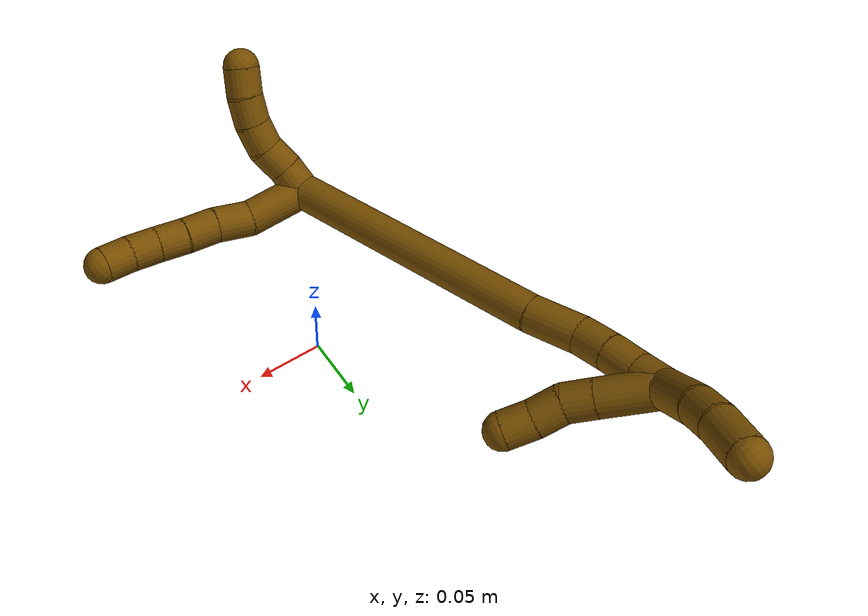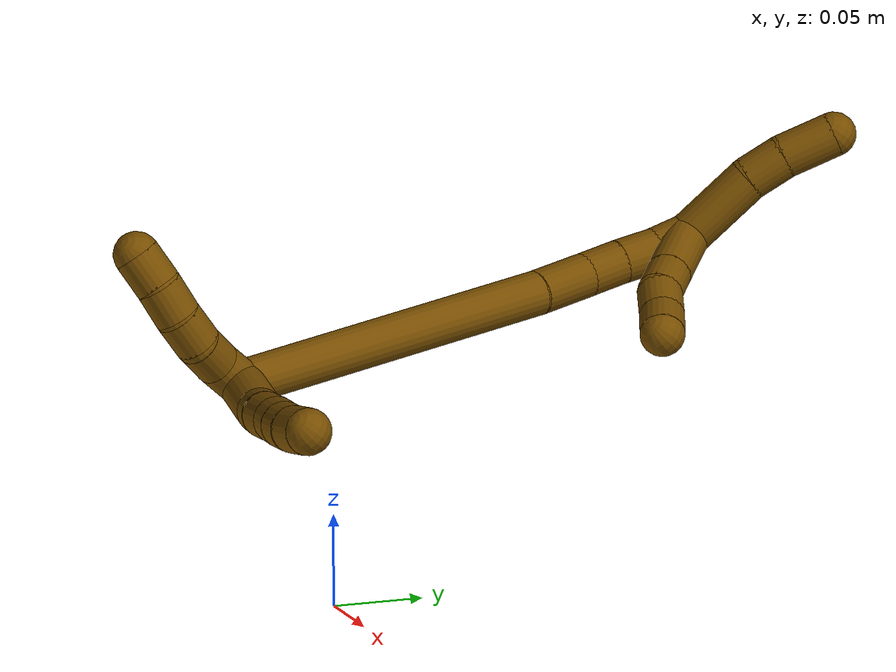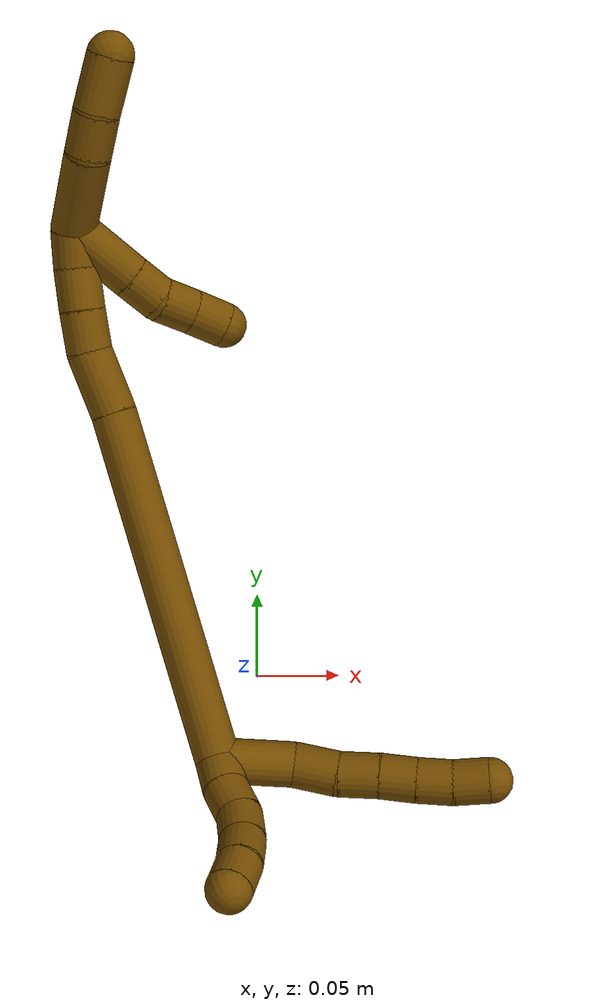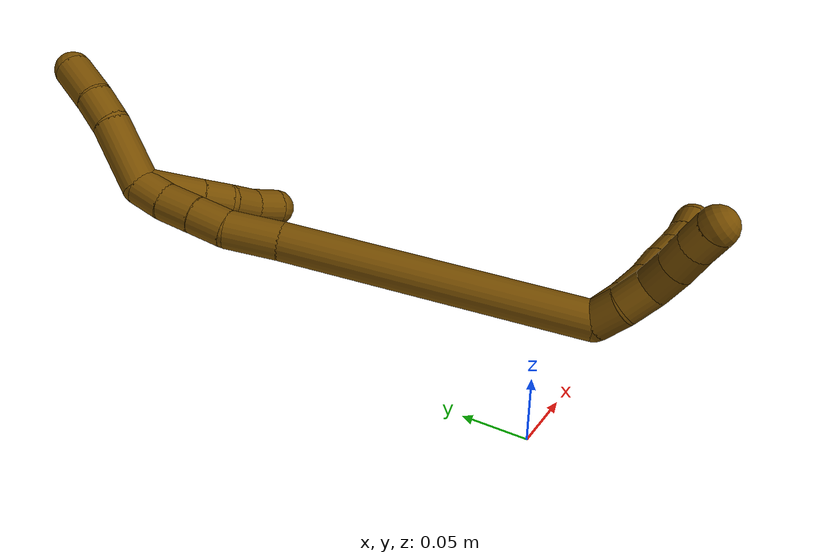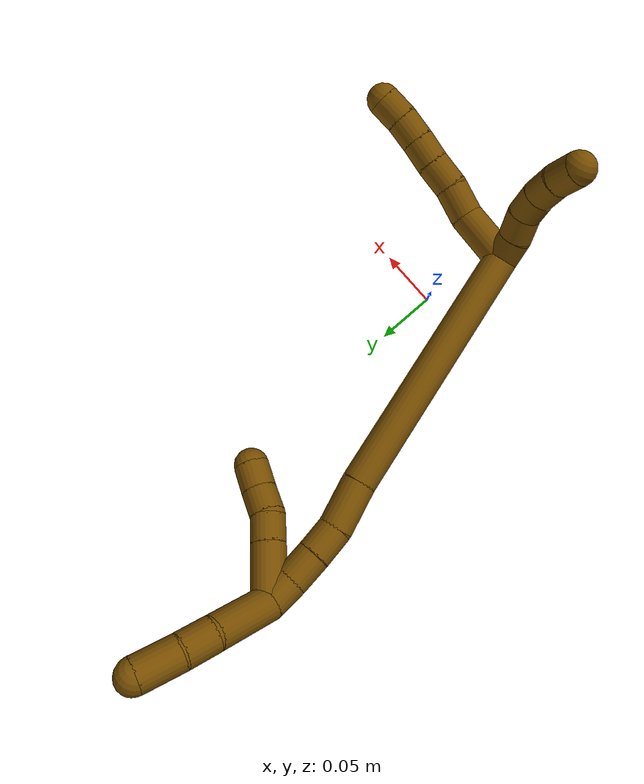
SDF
<sdf version="1.7">
 <world name="default">
  <model name="photoneo_s_sensor">
   <static>1</static>
   <pose>0 0 2 1.57079 1.57079 3.14159</pose>
   <link name="link">
    <inertial><mass>0.1</mass></inertial>
    <sensor name="sensor" type="depth">
     <update_rate>30</update_rate>
     <camera>
      <horizontal_fov>1.22</horizontal_fov>
      <image><width>1920</width><height>1200</height><format>B8G8R8</format></image>
      <clip><near>0.1</near><far>4</far></clip>
      <depth_camera><output>points</output></depth_camera>
     </camera>
     <plugin name="camera_plugin" filename="libgazebo_ros_depth_camera.so">
      <baseline>0.2</baseline>
      <alwaysOn>1</alwaysOn>
      <updateRate>0.0</updateRate>
      <cameraName>camera_ir</cameraName>
      <imageTopicName>/camera/color/image_raw</imageTopicName>
      <cameraInfoTopicName>/camera/color/camera_info</cameraInfoTopicName>
      <depthImageTopicName>/camera/depth/image_raw</depthImageTopicName>
      <depthImageCameraInfoTopicName>/camera/depth/camera_info</depthImageCameraInfoTopicName>
      <pointCloudTopicName>/camera/depth/points</pointCloudTopicName>
      <frameName>fr_optical</frameName>
      <pointCloudCutoff>0.1</pointCloudCutoff>
      <pointCloudCutoffMax>2.0</pointCloudCutoffMax>
      <distortionK1>0</distortionK1>
      <distortionK2>0</distortionK2>
      <distortionK3>0</distortionK3>
      <distortionT1>0</distortionT1>
      <distortionT2>0</distortionT2>
      <CxPrime>0</CxPrime>
      <Cx>0</Cx>
      <Cy>0</Cy>
      <focalLength>0</focalLength>
      <hackBaseline>0</hackBaseline>
     </plugin>
    </sensor>
   </link>
  </model>
  <model name="12">
   <static>0</static>
   <link name="12">
    <collision name="collision-cylinder-e_1_2_8">
     <pose>0.020426 0.0005 0.004698 -0.106006 1.34351 -0.084315</pose>
     <geometry><cylinder><radius>0.0125</radius><length>0.041931</length></cylinder></geometry>
     <surface>
      <friction><ode><mu>1.16</mu><mu2>1.16</mu2><slip1>0</slip1><slip2>0</slip2></ode></friction>
      <contact><ode><kp>1e+06</kp><kd>1</kd><max_vel>0</max_vel><min_depth>0.001</min_depth></ode></contact>
     </surface>
    </collision>
    <visual name="visual-cylinder-e_1_2_8">
     <pose>0.020426 0.0005 0.004698 -0.106006 1.34351 -0.084315</pose>
     <geometry><cylinder><radius>0.0125</radius><length>0.041931</length></cylinder></geometry>
     <material><ambient>0.466667 0.301961 0 1</ambient></material>
    </visual>
    <collision name="collision-cylinder-e_2_8_9">
     <pose>0.05171 0.002596 0.015751 -0.246018 1.02778 -0.13935</pose>
     <geometry><cylinder><radius>0.0125</radius><length>0.025364</length></cylinder></geometry>
     <surface>
      <friction><ode><mu>1.16</mu><mu2>1.16</mu2><slip1>0</slip1><slip2>0</slip2></ode></friction>
      <contact><ode><kp>1e+06</kp><kd>1</kd><max_vel>0</max_vel><min_depth>0.001</min_depth></ode></contact>
     </surface>
    </collision>
    <visual name="visual-cylinder-e_2_8_9">
     <pose>0.05171 0.002596 0.015751 -0.246018 1.02778 -0.13935</pose>
     <geometry><cylinder><radius>0.0125</radius><length>0.025364</length></cylinder></geometry>
     <material><ambient>0.466667 0.301961 0 1</ambient></material>
    </visual>
    <collision name="collision-cylinder-e_3_9_10">
     <pose>0.072721 0.006543 0.026158 -0.525886 1.13857 -0.341175</pose>
     <geometry><cylinder><radius>0.0125</radius><length>0.022362</length></cylinder></geometry>
     <surface>
      <friction><ode><mu>1.16</mu><mu2>1.16</mu2><slip1>0</slip1><slip2>0</slip2></ode></friction>
      <contact><ode><kp>1e+06</kp><kd>1</kd><max_vel>0</max_vel><min_depth>0.001</min_depth></ode></contact>
     </surface>
    </collision>
    <visual name="visual-cylinder-e_3_9_10">
     <pose>0.072721 0.006543 0.026158 -0.525886 1.13857 -0.341175</pose>
     <geometry><cylinder><radius>0.0125</radius><length>0.022362</length></cylinder></geometry>
     <material><ambient>0.466667 0.301961 0 1</ambient></material>
    </visual>
    <collision name="collision-cylinder-e_4_10_11">
     <pose>0.091967 0.010427 0.034365 -0.353378 1.11747 -0.222334</pose>
     <geometry><cylinder><radius>0.0125</radius><length>0.02023</length></cylinder></geometry>
     <surface>
      <friction><ode><mu>1.16</mu><mu2>1.16</mu2><slip1>0</slip1><slip2>0</slip2></ode></friction>
      <contact><ode><kp>1e+06</kp><kd>1</kd><max_vel>0</max_vel><min_depth>0.001</min_depth></ode></contact>
     </surface>
    </collision>
    <visual name="visual-cylinder-e_4_10_11">
     <pose>0.091967 0.010427 0.034365 -0.353378 1.11747 -0.222334</pose>
     <geometry><cylinder><radius>0.0125</radius><length>0.02023</length></cylinder></geometry>
     <material><ambient>0.466667 0.301961 0 1</ambient></material>
    </visual>
    <collision name="collision-cylinder-e_5_11_12">
     <pose>0.110096 0.013985 0.042378 -0.483413 1.12159 -0.307227</pose>
     <geometry><cylinder><radius>0.0125</radius><length>0.02006</length></cylinder></geometry>
     <surface>
      <friction><ode><mu>1.16</mu><mu2>1.16</mu2><slip1>0</slip1><slip2>0</slip2></ode></friction>
      <contact><ode><kp>1e+06</kp><kd>1</kd><max_vel>0</max_vel><min_depth>0.001</min_depth></ode></contact>
     </surface>
    </collision>
    <visual name="visual-cylinder-e_5_11_12">
     <pose>0.110096 0.013985 0.042378 -0.483413 1.12159 -0.307227</pose>
     <geometry><cylinder><radius>0.0125</radius><length>0.02006</length></cylinder></geometry>
     <material><ambient>0.466667 0.301961 0 1</ambient></material>
    </visual>
    <collision name="collision-cylinder-e_6_12_6">
     <pose>0.1281 0.019196 0.049384 -0.791234 1.10749 -0.505382</pose>
     <geometry><cylinder><radius>0.0125</radius><length>0.020052</length></cylinder></geometry>
     <surface>
      <friction><ode><mu>1.16</mu><mu2>1.16</mu2><slip1>0</slip1><slip2>0</slip2></ode></friction>
      <contact><ode><kp>1e+06</kp><kd>1</kd><max_vel>0</max_vel><min_depth>0.001</min_depth></ode></contact>
     </surface>
    </collision>
    <visual name="visual-cylinder-e_6_12_6">
     <pose>0.1281 0.019196 0.049384 -0.791234 1.10749 -0.505382</pose>
     <geometry><cylinder><radius>0.0125</radius><length>0.020052</length></cylinder></geometry>
     <material><ambient>0.466667 0.301961 0 1</ambient></material>
    </visual>
    <collision name="collision-cylinder-e_1_2_13">
     <pose>-0.000491 -0.000122 0.009987 0.012199 -0.049072 -0.000299</pose>
     <geometry><cylinder><radius>0.0125</radius><length>0.02</length></cylinder></geometry>
     <surface>
      <friction><ode><mu>1.16</mu><mu2>1.16</mu2><slip1>0</slip1><slip2>0</slip2></ode></friction>
      <contact><ode><kp>1e+06</kp><kd>1</kd><max_vel>0</max_vel><min_depth>0.001</min_depth></ode></contact>
     </surface>
    </collision>
    <visual name="visual-cylinder-e_1_2_13">
     <pose>-0.000491 -0.000122 0.009987 0.012199 -0.049072 -0.000299</pose>
     <geometry><cylinder><radius>0.0125</radius><length>0.02</length></cylinder></geometry>
     <material><ambient>0.466667 0.301961 0 1</ambient></material>
    </visual>
    <collision name="collision-cylinder-e_2_13_14">
     <pose>5.7e-05 0.000556 0.029888 -0.080484 0.10401 -0.004192</pose>
     <geometry><cylinder><radius>0.0125</radius><length>0.02</length></cylinder></geometry>
     <surface>
      <friction><ode><mu>1.16</mu><mu2>1.16</mu2><slip1>0</slip1><slip2>0</slip2></ode></friction>
      <contact><ode><kp>1e+06</kp><kd>1</kd><max_vel>0</max_vel><min_depth>0.001</min_depth></ode></contact>
     </surface>
    </collision>
    <visual name="visual-cylinder-e_2_13_14">
     <pose>5.7e-05 0.000556 0.029888 -0.080484 0.10401 -0.004192</pose>
     <geometry><cylinder><radius>0.0125</radius><length>0.02</length></cylinder></geometry>
     <material><ambient>0.466667 0.301961 0 1</ambient></material>
    </visual>
    <collision name="collision-cylinder-e_3_14_15">
     <pose>-0.000968 0.003172 0.049417 -0.186728 -0.207799 0.019527</pose>
     <geometry><cylinder><radius>0.0125</radius><length>0.02</length></cylinder></geometry>
     <surface>
      <friction><ode><mu>1.16</mu><mu2>1.16</mu2><slip1>0</slip1><slip2>0</slip2></ode></friction>
      <contact><ode><kp>1e+06</kp><kd>1</kd><max_vel>0</max_vel><min_depth>0.001</min_depth></ode></contact>
     </surface>
    </collision>
    <visual name="visual-cylinder-e_3_14_15">
     <pose>-0.000968 0.003172 0.049417 -0.186728 -0.207799 0.019527</pose>
     <geometry><cylinder><radius>0.0125</radius><length>0.02</length></cylinder></geometry>
     <material><ambient>0.466667 0.301961 0 1</ambient></material>
    </visual>
    <collision name="collision-cylinder-e_4_15_16">
     <pose>-0.006835 0.007388 0.067963 -0.262424 -0.390221 0.052149</pose>
     <geometry><cylinder><radius>0.0125</radius><length>0.02</length></cylinder></geometry>
     <surface>
      <friction><ode><mu>1.16</mu><mu2>1.16</mu2><slip1>0</slip1><slip2>0</slip2></ode></friction>
      <contact><ode><kp>1e+06</kp><kd>1</kd><max_vel>0</max_vel><min_depth>0.001</min_depth></ode></contact>
     </surface>
    </collision>
    <visual name="visual-cylinder-e_4_15_16">
     <pose>-0.006835 0.007388 0.067963 -0.262424 -0.390221 0.052149</pose>
     <geometry><cylinder><radius>0.0125</radius><length>0.02</length></cylinder></geometry>
     <material><ambient>0.466667 0.301961 0 1</ambient></material>
    </visual>
    <collision name="collision-cylinder-e_5_16_5">
     <pose>-0.015879 0.011542 0.085229 -0.207585 -0.551609 0.058945</pose>
     <geometry><cylinder><radius>0.0125</radius><length>0.02</length></cylinder></geometry>
     <surface>
      <friction><ode><mu>1.16</mu><mu2>1.16</mu2><slip1>0</slip1><slip2>0</slip2></ode></friction>
      <contact><ode><kp>1e+06</kp><kd>1</kd><max_vel>0</max_vel><min_depth>0.001</min_depth></ode></contact>
     </surface>
    </collision>
    <visual name="visual-cylinder-e_5_16_5">
     <pose>-0.015879 0.011542 0.085229 -0.207585 -0.551609 0.058945</pose>
     <geometry><cylinder><radius>0.0125</radius><length>0.02</length></cylinder></geometry>
     <material><ambient>0.466667 0.301961 0 1</ambient></material>
    </visual>
    <collision name="collision-cylinder-e_1_2_17">
     <pose>-0.022491 0.06887 -0.067321 -2.34483 -0.229416 0.534386</pose>
     <geometry><cylinder><radius>0.0125</radius><length>0.197799</length></cylinder></geometry>
     <surface>
      <friction><ode><mu>1.16</mu><mu2>1.16</mu2><slip1>0</slip1><slip2>0</slip2></ode></friction>
      <contact><ode><kp>1e+06</kp><kd>1</kd><max_vel>0</max_vel><min_depth>0.001</min_depth></ode></contact>
     </surface>
    </collision>
    <visual name="visual-cylinder-e_1_2_17">
     <pose>-0.022491 0.06887 -0.067321 -2.34483 -0.229416 0.534386</pose>
     <geometry><cylinder><radius>0.0125</radius><length>0.197799</length></cylinder></geometry>
     <material><ambient>0.466667 0.301961 0 1</ambient></material>
    </visual>
    <collision name="collision-cylinder-e_2_17_18">
     <pose>-0.050589 0.149781 -0.146621 -2.35359 -0.318905 0.738192</pose>
     <geometry><cylinder><radius>0.0125</radius><length>0.035772</length></cylinder></geometry>
     <surface>
      <friction><ode><mu>1.16</mu><mu2>1.16</mu2><slip1>0</slip1><slip2>0</slip2></ode></friction>
      <contact><ode><kp>1e+06</kp><kd>1</kd><max_vel>0</max_vel><min_depth>0.001</min_depth></ode></contact>
     </surface>
    </collision>
    <visual name="visual-cylinder-e_2_17_18">
     <pose>-0.050589 0.149781 -0.146621 -2.35359 -0.318905 0.738192</pose>
     <geometry><cylinder><radius>0.0125</radius><length>0.035772</length></cylinder></geometry>
     <material><ambient>0.466667 0.301961 0 1</ambient></material>
    </visual>
    <collision name="collision-cylinder-e_3_18_19">
     <pose>-0.057802 0.171054 -0.165327 -2.20053 -0.139634 0.27326</pose>
     <geometry><cylinder><radius>0.0125</radius><length>0.023072</length></cylinder></geometry>
     <surface>
      <friction><ode><mu>1.16</mu><mu2>1.16</mu2><slip1>0</slip1><slip2>0</slip2></ode></friction>
      <contact><ode><kp>1e+06</kp><kd>1</kd><max_vel>0</max_vel><min_depth>0.001</min_depth></ode></contact>
     </surface>
    </collision>
    <visual name="visual-cylinder-e_3_18_19">
     <pose>-0.057802 0.171054 -0.165327 -2.20053 -0.139634 0.27326</pose>
     <geometry><cylinder><radius>0.0125</radius><length>0.023072</length></cylinder></geometry>
     <material><ambient>0.466667 0.301961 0 1</ambient></material>
    </visual>
    <collision name="collision-cylinder-e_4_19_20">
     <pose>-0.060507 0.189411 -0.179006 -2.22185 -0.095576 0.19252</pose>
     <geometry><cylinder><radius>0.0125</radius><length>0.023046</length></cylinder></geometry>
     <surface>
      <friction><ode><mu>1.16</mu><mu2>1.16</mu2><slip1>0</slip1><slip2>0</slip2></ode></friction>
      <contact><ode><kp>1e+06</kp><kd>1</kd><max_vel>0</max_vel><min_depth>0.001</min_depth></ode></contact>
     </surface>
    </collision>
    <visual name="visual-cylinder-e_4_19_20">
     <pose>-0.060507 0.189411 -0.179006 -2.22185 -0.095576 0.19252</pose>
     <geometry><cylinder><radius>0.0125</radius><length>0.023046</length></cylinder></geometry>
     <material><ambient>0.466667 0.301961 0 1</ambient></material>
    </visual>
    <collision name="collision-cylinder-e_5_20_1">
     <pose>-0.062335 0.20738 -0.190895 -2.07987 -0.071716 0.122059</pose>
     <geometry><cylinder><radius>0.0125</radius><length>0.020311</length></cylinder></geometry>
     <surface>
      <friction><ode><mu>1.16</mu><mu2>1.16</mu2><slip1>0</slip1><slip2>0</slip2></ode></friction>
      <contact><ode><kp>1e+06</kp><kd>1</kd><max_vel>0</max_vel><min_depth>0.001</min_depth></ode></contact>
     </surface>
    </collision>
    <visual name="visual-cylinder-e_5_20_1">
     <pose>-0.062335 0.20738 -0.190895 -2.07987 -0.071716 0.122059</pose>
     <geometry><cylinder><radius>0.0125</radius><length>0.020311</length></cylinder></geometry>
     <material><ambient>0.466667 0.301961 0 1</ambient></material>
    </visual>
    <collision name="collision-cylinder-e_1_1_21">
     <pose>-0.061697 0.239581 -0.195616 -1.56156 0.058392 -0.057855</pose>
     <geometry><cylinder><radius>0.0125</radius><length>0.046793</length></cylinder></geometry>
     <surface>
      <friction><ode><mu>1.16</mu><mu2>1.16</mu2><slip1>0</slip1><slip2>0</slip2></ode></friction>
      <contact><ode><kp>1e+06</kp><kd>1</kd><max_vel>0</max_vel><min_depth>0.001</min_depth></ode></contact>
     </surface>
    </collision>
    <visual name="visual-cylinder-e_1_1_21">
     <pose>-0.061697 0.239581 -0.195616 -1.56156 0.058392 -0.057855</pose>
     <geometry><cylinder><radius>0.0125</radius><length>0.046793</length></cylinder></geometry>
     <material><ambient>0.466667 0.301961 0 1</ambient></material>
    </visual>
    <collision name="collision-cylinder-e_2_21_22">
     <pose>-0.058886 0.274148 -0.197389 -1.74639 0.126261 -0.15055</pose>
     <geometry><cylinder><radius>0.0125</radius><length>0.022956</length></cylinder></geometry>
     <surface>
      <friction><ode><mu>1.16</mu><mu2>1.16</mu2><slip1>0</slip1><slip2>0</slip2></ode></friction>
      <contact><ode><kp>1e+06</kp><kd>1</kd><max_vel>0</max_vel><min_depth>0.001</min_depth></ode></contact>
     </surface>
    </collision>
    <visual name="visual-cylinder-e_2_21_22">
     <pose>-0.058886 0.274148 -0.197389 -1.74639 0.126261 -0.15055</pose>
     <geometry><cylinder><radius>0.0125</radius><length>0.022956</length></cylinder></geometry>
     <material><ambient>0.466667 0.301961 0 1</ambient></material>
    </visual>
    <collision name="collision-cylinder-e_3_22_4">
     <pose>-0.054354 0.299501 -0.203766 -1.8716 0.205537 -0.278141</pose>
     <geometry><cylinder><radius>0.0125</radius><length>0.030251</length></cylinder></geometry>
     <surface>
      <friction><ode><mu>1.16</mu><mu2>1.16</mu2><slip1>0</slip1><slip2>0</slip2></ode></friction>
      <contact><ode><kp>1e+06</kp><kd>1</kd><max_vel>0</max_vel><min_depth>0.001</min_depth></ode></contact>
     </surface>
    </collision>
    <visual name="visual-cylinder-e_3_22_4">
     <pose>-0.054354 0.299501 -0.203766 -1.8716 0.205537 -0.278141</pose>
     <geometry><cylinder><radius>0.0125</radius><length>0.030251</length></cylinder></geometry>
     <material><ambient>0.466667 0.301961 0 1</ambient></material>
    </visual>
    <collision name="collision-cylinder-e_1_1_23">
     <pose>-0.047782 0.206076 -0.188208 0.926608 0.877611 0.4606</pose>
     <geometry><cylinder><radius>0.0125</radius><length>0.039729</length></cylinder></geometry>
     <surface>
      <friction><ode><mu>1.16</mu><mu2>1.16</mu2><slip1>0</slip1><slip2>0</slip2></ode></friction>
      <contact><ode><kp>1e+06</kp><kd>1</kd><max_vel>0</max_vel><min_depth>0.001</min_depth></ode></contact>
     </surface>
    </collision>
    <visual name="visual-cylinder-e_1_1_23">
     <pose>-0.047782 0.206076 -0.188208 0.926608 0.877611 0.4606</pose>
     <geometry><cylinder><radius>0.0125</radius><length>0.039729</length></cylinder></geometry>
     <material><ambient>0.466667 0.301961 0 1</ambient></material>
    </visual>
    <collision name="collision-cylinder-e_2_23_24">
     <pose>-0.024706 0.190939 -0.176767 0.917308 0.892607 0.464035</pose>
     <geometry><cylinder><radius>0.0125</radius><length>0.020024</length></cylinder></geometry>
     <surface>
      <friction><ode><mu>1.16</mu><mu2>1.16</mu2><slip1>0</slip1><slip2>0</slip2></ode></friction>
      <contact><ode><kp>1e+06</kp><kd>1</kd><max_vel>0</max_vel><min_depth>0.001</min_depth></ode></contact>
     </surface>
    </collision>
    <visual name="visual-cylinder-e_2_23_24">
     <pose>-0.024706 0.190939 -0.176767 0.917308 0.892607 0.464035</pose>
     <geometry><cylinder><radius>0.0125</radius><length>0.020024</length></cylinder></geometry>
     <material><ambient>0.466667 0.301961 0 1</ambient></material>
    </visual>
    <collision name="collision-cylinder-e_3_24_25">
     <pose>-0.007516 0.182465 -0.171612 1.20488 1.19243 0.873294</pose>
     <geometry><cylinder><radius>0.0125</radius><length>0.020218</length></cylinder></geometry>
     <surface>
      <friction><ode><mu>1.16</mu><mu2>1.16</mu2><slip1>0</slip1><slip2>0</slip2></ode></friction>
      <contact><ode><kp>1e+06</kp><kd>1</kd><max_vel>0</max_vel><min_depth>0.001</min_depth></ode></contact>
     </surface>
    </collision>
    <visual name="visual-cylinder-e_3_24_25">
     <pose>-0.007516 0.182465 -0.171612 1.20488 1.19243 0.873294</pose>
     <geometry><cylinder><radius>0.0125</radius><length>0.020218</length></cylinder></geometry>
     <material><ambient>0.466667 0.301961 0 1</ambient></material>
    </visual>
    <collision name="collision-cylinder-e_4_25_3">
     <pose>0.011032 0.176107 -0.167403 0.785095 1.15321 0.52604</pose>
     <geometry><cylinder><radius>0.0125</radius><length>0.020029</length></cylinder></geometry>
     <surface>
      <friction><ode><mu>1.16</mu><mu2>1.16</mu2><slip1>0</slip1><slip2>0</slip2></ode></friction>
      <contact><ode><kp>1e+06</kp><kd>1</kd><max_vel>0</max_vel><min_depth>0.001</min_depth></ode></contact>
     </surface>
    </collision>
    <visual name="visual-cylinder-e_4_25_3">
     <pose>0.011032 0.176107 -0.167403 0.785095 1.15321 0.52604</pose>
     <geometry><cylinder><radius>0.0125</radius><length>0.020029</length></cylinder></geometry>
     <material><ambient>0.466667 0.301961 0 1</ambient></material>
    </visual>
    <collision name="collision-sphere-3">
     <pose>0.020186 0.173236 -0.16453 0 -0 0</pose>
     <geometry><sphere><radius>0.0125</radius></sphere></geometry>
     <surface>
      <friction><ode><mu>1.16</mu><mu2>1.16</mu2><slip1>0</slip1><slip2>0</slip2></ode></friction>
      <contact><ode><kp>1e+06</kp><kd>1</kd><max_vel>0</max_vel><min_depth>0.001</min_depth></ode></contact>
     </surface>
    </collision>
    <visual name="visual-sphere-3">
     <pose>0.020186 0.173236 -0.16453 0 -0 0</pose>
     <geometry><sphere><radius>0.0125</radius></sphere></geometry>
     <material><ambient>0.466667 0.301961 0 1</ambient></material>
    </visual>
    <collision name="collision-sphere-25">
     <pose>0.001878 0.178978 -0.170276 0 -0 0</pose>
     <geometry><sphere><radius>0.0125</radius></sphere></geometry>
     <surface>
      <friction><ode><mu>1.16</mu><mu2>1.16</mu2><slip1>0</slip1><slip2>0</slip2></ode></friction>
      <contact><ode><kp>1e+06</kp><kd>1</kd><max_vel>0</max_vel><min_depth>0.001</min_depth></ode></contact>
     </surface>
    </collision>
    <visual name="visual-sphere-25">
     <pose>0.001878 0.178978 -0.170276 0 -0 0</pose>
     <geometry><sphere><radius>0.0125</radius></sphere></geometry>
     <material><ambient>0.466667 0.301961 0 1</ambient></material>
    </visual>
    <collision name="collision-sphere-24">
     <pose>-0.01691 0.185952 -0.172948 0 -0 0</pose>
     <geometry><sphere><radius>0.0125</radius></sphere></geometry>
     <surface>
      <friction><ode><mu>1.16</mu><mu2>1.16</mu2><slip1>0</slip1><slip2>0</slip2></ode></friction>
      <contact><ode><kp>1e+06</kp><kd>1</kd><max_vel>0</max_vel><min_depth>0.001</min_depth></ode></contact>
     </surface>
    </collision>
    <visual name="visual-sphere-24">
     <pose>-0.01691 0.185952 -0.172948 0 -0 0</pose>
     <geometry><sphere><radius>0.0125</radius></sphere></geometry>
     <material><ambient>0.466667 0.301961 0 1</ambient></material>
    </visual>
    <collision name="collision-sphere-23">
     <pose>-0.032502 0.195926 -0.180585 0 -0 0</pose>
     <geometry><sphere><radius>0.0125</radius></sphere></geometry>
     <surface>
      <friction><ode><mu>1.16</mu><mu2>1.16</mu2><slip1>0</slip1><slip2>0</slip2></ode></friction>
      <contact><ode><kp>1e+06</kp><kd>1</kd><max_vel>0</max_vel><min_depth>0.001</min_depth></ode></contact>
     </surface>
    </collision>
    <visual name="visual-sphere-23">
     <pose>-0.032502 0.195926 -0.180585 0 -0 0</pose>
     <geometry><sphere><radius>0.0125</radius></sphere></geometry>
     <material><ambient>0.466667 0.301961 0 1</ambient></material>
    </visual>
    <collision name="collision-sphere-4">
     <pose>-0.051267 0.313644 -0.208153 0 -0 0</pose>
     <geometry><sphere><radius>0.0125</radius></sphere></geometry>
     <surface>
      <friction><ode><mu>1.16</mu><mu2>1.16</mu2><slip1>0</slip1><slip2>0</slip2></ode></friction>
      <contact><ode><kp>1e+06</kp><kd>1</kd><max_vel>0</max_vel><min_depth>0.001</min_depth></ode></contact>
     </surface>
    </collision>
    <visual name="visual-sphere-4">
     <pose>-0.051267 0.313644 -0.208153 0 -0 0</pose>
     <geometry><sphere><radius>0.0125</radius></sphere></geometry>
     <material><ambient>0.466667 0.301961 0 1</ambient></material>
    </visual>
    <collision name="collision-sphere-22">
     <pose>-0.057441 0.285359 -0.199378 0 -0 0</pose>
     <geometry><sphere><radius>0.0125</radius></sphere></geometry>
     <surface>
      <friction><ode><mu>1.16</mu><mu2>1.16</mu2><slip1>0</slip1><slip2>0</slip2></ode></friction>
      <contact><ode><kp>1e+06</kp><kd>1</kd><max_vel>0</max_vel><min_depth>0.001</min_depth></ode></contact>
     </surface>
    </collision>
    <visual name="visual-sphere-22">
     <pose>-0.057441 0.285359 -0.199378 0 -0 0</pose>
     <geometry><sphere><radius>0.0125</radius></sphere></geometry>
     <material><ambient>0.466667 0.301961 0 1</ambient></material>
    </visual>
    <collision name="collision-sphere-21">
     <pose>-0.060332 0.262936 -0.1954 0 -0 0</pose>
     <geometry><sphere><radius>0.0125</radius></sphere></geometry>
     <surface>
      <friction><ode><mu>1.16</mu><mu2>1.16</mu2><slip1>0</slip1><slip2>0</slip2></ode></friction>
      <contact><ode><kp>1e+06</kp><kd>1</kd><max_vel>0</max_vel><min_depth>0.001</min_depth></ode></contact>
     </surface>
    </collision>
    <visual name="visual-sphere-21">
     <pose>-0.060332 0.262936 -0.1954 0 -0 0</pose>
     <geometry><sphere><radius>0.0125</radius></sphere></geometry>
     <material><ambient>0.466667 0.301961 0 1</ambient></material>
    </visual>
    <collision name="collision-sphere-1">
     <pose>-0.063063 0.216225 -0.195831 0 -0 0</pose>
     <geometry><sphere><radius>0.0125</radius></sphere></geometry>
     <surface>
      <friction><ode><mu>1.16</mu><mu2>1.16</mu2><slip1>0</slip1><slip2>0</slip2></ode></friction>
      <contact><ode><kp>1e+06</kp><kd>1</kd><max_vel>0</max_vel><min_depth>0.001</min_depth></ode></contact>
     </surface>
    </collision>
    <visual name="visual-sphere-1">
     <pose>-0.063063 0.216225 -0.195831 0 -0 0</pose>
     <geometry><sphere><radius>0.0125</radius></sphere></geometry>
     <material><ambient>0.466667 0.301961 0 1</ambient></material>
    </visual>
    <collision name="collision-sphere-12">
     <pose>0.119131 0.016009 0.046235 0 -0 0</pose>
     <geometry><sphere><radius>0.0125</radius></sphere></geometry>
     <surface>
      <friction><ode><mu>1.16</mu><mu2>1.16</mu2><slip1>0</slip1><slip2>0</slip2></ode></friction>
      <contact><ode><kp>1e+06</kp><kd>1</kd><max_vel>0</max_vel><min_depth>0.001</min_depth></ode></contact>
     </surface>
    </collision>
    <visual name="visual-sphere-12">
     <pose>0.119131 0.016009 0.046235 0 -0 0</pose>
     <geometry><sphere><radius>0.0125</radius></sphere></geometry>
     <material><ambient>0.466667 0.301961 0 1</ambient></material>
    </visual>
    <collision name="collision-sphere-11">
     <pose>0.101061 0.01196 0.038522 0 -0 0</pose>
     <geometry><sphere><radius>0.0125</radius></sphere></geometry>
     <surface>
      <friction><ode><mu>1.16</mu><mu2>1.16</mu2><slip1>0</slip1><slip2>0</slip2></ode></friction>
      <contact><ode><kp>1e+06</kp><kd>1</kd><max_vel>0</max_vel><min_depth>0.001</min_depth></ode></contact>
     </surface>
    </collision>
    <visual name="visual-sphere-11">
     <pose>0.101061 0.01196 0.038522 0 -0 0</pose>
     <geometry><sphere><radius>0.0125</radius></sphere></geometry>
     <material><ambient>0.466667 0.301961 0 1</ambient></material>
    </visual>
    <collision name="collision-sphere-10">
     <pose>0.082874 0.008894 0.030209 0 -0 0</pose>
     <geometry><sphere><radius>0.0125</radius></sphere></geometry>
     <surface>
      <friction><ode><mu>1.16</mu><mu2>1.16</mu2><slip1>0</slip1><slip2>0</slip2></ode></friction>
      <contact><ode><kp>1e+06</kp><kd>1</kd><max_vel>0</max_vel><min_depth>0.001</min_depth></ode></contact>
     </surface>
    </collision>
    <visual name="visual-sphere-10">
     <pose>0.082874 0.008894 0.030209 0 -0 0</pose>
     <geometry><sphere><radius>0.0125</radius></sphere></geometry>
     <material><ambient>0.466667 0.301961 0 1</ambient></material>
    </visual>
    <collision name="collision-sphere-9">
     <pose>0.062568 0.004192 0.022107 0 -0 0</pose>
     <geometry><sphere><radius>0.0125</radius></sphere></geometry>
     <surface>
      <friction><ode><mu>1.16</mu><mu2>1.16</mu2><slip1>0</slip1><slip2>0</slip2></ode></friction>
      <contact><ode><kp>1e+06</kp><kd>1</kd><max_vel>0</max_vel><min_depth>0.001</min_depth></ode></contact>
     </surface>
    </collision>
    <visual name="visual-sphere-9">
     <pose>0.062568 0.004192 0.022107 0 -0 0</pose>
     <geometry><sphere><radius>0.0125</radius></sphere></geometry>
     <material><ambient>0.466667 0.301961 0 1</ambient></material>
    </visual>
    <collision name="collision-sphere-2">
     <geometry><sphere><radius>0.0125</radius></sphere></geometry>
     <surface>
      <friction><ode><mu>1.16</mu><mu2>1.16</mu2><slip1>0</slip1><slip2>0</slip2></ode></friction>
      <contact><ode><kp>1e+06</kp><kd>1</kd><max_vel>0</max_vel><min_depth>0.001</min_depth></ode></contact>
     </surface>
    </collision>
    <visual name="visual-sphere-2">
     <geometry><sphere><radius>0.0125</radius></sphere></geometry>
     <material><ambient>0.466667 0.301961 0 1</ambient></material>
    </visual>
    <collision name="collision-sphere-19">
     <pose>-0.059408 0.180287 -0.172055 0 -0 0</pose>
     <geometry><sphere><radius>0.0125</radius></sphere></geometry>
     <surface>
      <friction><ode><mu>1.16</mu><mu2>1.16</mu2><slip1>0</slip1><slip2>0</slip2></ode></friction>
      <contact><ode><kp>1e+06</kp><kd>1</kd><max_vel>0</max_vel><min_depth>0.001</min_depth></ode></contact>
     </surface>
    </collision>
    <visual name="visual-sphere-19">
     <pose>-0.059408 0.180287 -0.172055 0 -0 0</pose>
     <geometry><sphere><radius>0.0125</radius></sphere></geometry>
     <material><ambient>0.466667 0.301961 0 1</ambient></material>
    </visual>
    <collision name="collision-sphere-8">
     <pose>0.040852 0.001 0.009396 0 -0 0</pose>
     <geometry><sphere><radius>0.0125</radius></sphere></geometry>
     <surface>
      <friction><ode><mu>1.16</mu><mu2>1.16</mu2><slip1>0</slip1><slip2>0</slip2></ode></friction>
      <contact><ode><kp>1e+06</kp><kd>1</kd><max_vel>0</max_vel><min_depth>0.001</min_depth></ode></contact>
     </surface>
    </collision>
    <visual name="visual-sphere-8">
     <pose>0.040852 0.001 0.009396 0 -0 0</pose>
     <geometry><sphere><radius>0.0125</radius></sphere></geometry>
     <material><ambient>0.466667 0.301961 0 1</ambient></material>
    </visual>
    <collision name="collision-sphere-6">
     <pose>0.137069 0.022383 0.052534 0 -0 0</pose>
     <geometry><sphere><radius>0.0125</radius></sphere></geometry>
     <surface>
      <friction><ode><mu>1.16</mu><mu2>1.16</mu2><slip1>0</slip1><slip2>0</slip2></ode></friction>
      <contact><ode><kp>1e+06</kp><kd>1</kd><max_vel>0</max_vel><min_depth>0.001</min_depth></ode></contact>
     </surface>
    </collision>
    <visual name="visual-sphere-6">
     <pose>0.137069 0.022383 0.052534 0 -0 0</pose>
     <geometry><sphere><radius>0.0125</radius></sphere></geometry>
     <material><ambient>0.466667 0.301961 0 1</ambient></material>
    </visual>
    <collision name="collision-sphere-13">
     <pose>-0.000981 -0.000244 0.019974 0 -0 0</pose>
     <geometry><sphere><radius>0.0125</radius></sphere></geometry>
     <surface>
      <friction><ode><mu>1.16</mu><mu2>1.16</mu2><slip1>0</slip1><slip2>0</slip2></ode></friction>
      <contact><ode><kp>1e+06</kp><kd>1</kd><max_vel>0</max_vel><min_depth>0.001</min_depth></ode></contact>
     </surface>
    </collision>
    <visual name="visual-sphere-13">
     <pose>-0.000981 -0.000244 0.019974 0 -0 0</pose>
     <geometry><sphere><radius>0.0125</radius></sphere></geometry>
     <material><ambient>0.466667 0.301961 0 1</ambient></material>
    </visual>
    <collision name="collision-sphere-14">
     <pose>0.001095 0.001356 0.039802 0 -0 0</pose>
     <geometry><sphere><radius>0.0125</radius></sphere></geometry>
     <surface>
      <friction><ode><mu>1.16</mu><mu2>1.16</mu2><slip1>0</slip1><slip2>0</slip2></ode></friction>
      <contact><ode><kp>1e+06</kp><kd>1</kd><max_vel>0</max_vel><min_depth>0.001</min_depth></ode></contact>
     </surface>
    </collision>
    <visual name="visual-sphere-14">
     <pose>0.001095 0.001356 0.039802 0 -0 0</pose>
     <geometry><sphere><radius>0.0125</radius></sphere></geometry>
     <material><ambient>0.466667 0.301961 0 1</ambient></material>
    </visual>
    <collision name="collision-sphere-15">
     <pose>-0.003031 0.004989 0.059032 0 -0 0</pose>
     <geometry><sphere><radius>0.0125</radius></sphere></geometry>
     <surface>
      <friction><ode><mu>1.16</mu><mu2>1.16</mu2><slip1>0</slip1><slip2>0</slip2></ode></friction>
      <contact><ode><kp>1e+06</kp><kd>1</kd><max_vel>0</max_vel><min_depth>0.001</min_depth></ode></contact>
     </surface>
    </collision>
    <visual name="visual-sphere-15">
     <pose>-0.003031 0.004989 0.059032 0 -0 0</pose>
     <geometry><sphere><radius>0.0125</radius></sphere></geometry>
     <material><ambient>0.466667 0.301961 0 1</ambient></material>
    </visual>
    <collision name="collision-sphere-16">
     <pose>-0.010639 0.009787 0.076895 0 -0 0</pose>
     <geometry><sphere><radius>0.0125</radius></sphere></geometry>
     <surface>
      <friction><ode><mu>1.16</mu><mu2>1.16</mu2><slip1>0</slip1><slip2>0</slip2></ode></friction>
      <contact><ode><kp>1e+06</kp><kd>1</kd><max_vel>0</max_vel><min_depth>0.001</min_depth></ode></contact>
     </surface>
    </collision>
    <visual name="visual-sphere-16">
     <pose>-0.010639 0.009787 0.076895 0 -0 0</pose>
     <geometry><sphere><radius>0.0125</radius></sphere></geometry>
     <material><ambient>0.466667 0.301961 0 1</ambient></material>
    </visual>
    <collision name="collision-sphere-5">
     <pose>-0.02112 0.013298 0.093563 0 -0 0</pose>
     <geometry><sphere><radius>0.0125</radius></sphere></geometry>
     <surface>
      <friction><ode><mu>1.16</mu><mu2>1.16</mu2><slip1>0</slip1><slip2>0</slip2></ode></friction>
      <contact><ode><kp>1e+06</kp><kd>1</kd><max_vel>0</max_vel><min_depth>0.001</min_depth></ode></contact>
     </surface>
    </collision>
    <visual name="visual-sphere-5">
     <pose>-0.02112 0.013298 0.093563 0 -0 0</pose>
     <geometry><sphere><radius>0.0125</radius></sphere></geometry>
     <material><ambient>0.466667 0.301961 0 1</ambient></material>
    </visual>
    <collision name="collision-sphere-17">
     <pose>-0.044981 0.13774 -0.134643 0 -0 0</pose>
     <geometry><sphere><radius>0.0125</radius></sphere></geometry>
     <surface>
      <friction><ode><mu>1.16</mu><mu2>1.16</mu2><slip1>0</slip1><slip2>0</slip2></ode></friction>
      <contact><ode><kp>1e+06</kp><kd>1</kd><max_vel>0</max_vel><min_depth>0.001</min_depth></ode></contact>
     </surface>
    </collision>
    <visual name="visual-sphere-17">
     <pose>-0.044981 0.13774 -0.134643 0 -0 0</pose>
     <geometry><sphere><radius>0.0125</radius></sphere></geometry>
     <material><ambient>0.466667 0.301961 0 1</ambient></material>
    </visual>
    <collision name="collision-sphere-18">
     <pose>-0.056197 0.161822 -0.1586 0 -0 0</pose>
     <geometry><sphere><radius>0.0125</radius></sphere></geometry>
     <surface>
      <friction><ode><mu>1.16</mu><mu2>1.16</mu2><slip1>0</slip1><slip2>0</slip2></ode></friction>
      <contact><ode><kp>1e+06</kp><kd>1</kd><max_vel>0</max_vel><min_depth>0.001</min_depth></ode></contact>
     </surface>
    </collision>
    <visual name="visual-sphere-18">
     <pose>-0.056197 0.161822 -0.1586 0 -0 0</pose>
     <geometry><sphere><radius>0.0125</radius></sphere></geometry>
     <material><ambient>0.466667 0.301961 0 1</ambient></material>
    </visual>
    <collision name="collision-sphere-20">
     <pose>-0.061607 0.198535 -0.185958 0 -0 0</pose>
     <geometry><sphere><radius>0.0125</radius></sphere></geometry>
     <surface>
      <friction><ode><mu>1.16</mu><mu2>1.16</mu2><slip1>0</slip1><slip2>0</slip2></ode></friction>
      <contact><ode><kp>1e+06</kp><kd>1</kd><max_vel>0</max_vel><min_depth>0.001</min_depth></ode></contact>
     </surface>
    </collision>
    <visual name="visual-sphere-20">
     <pose>-0.061607 0.198535 -0.185958 0 -0 0</pose>
     <geometry><sphere><radius>0.0125</radius></sphere></geometry>
     <material><ambient>0.466667 0.301961 0 1</ambient></material>
    </visual>
    <inertial>
     <pose>-0.011346 0.105141 -0.079333 0 -0 0</pose>
     <mass>0.75</mass>
     <inertia><ixx>0.000929</ixx><ixy>0</ixy><ixz>0</ixz><iyy>4e-05</iyy><iyz>0</iyz><izz>-0.000352</izz></inertia>
    </inertial>
   </link>
   <pose>-0.020211 -0.045113 0.121465 0.835116 0.323338 0.084313</pose>
  </model>
 </world>
</sdf>
